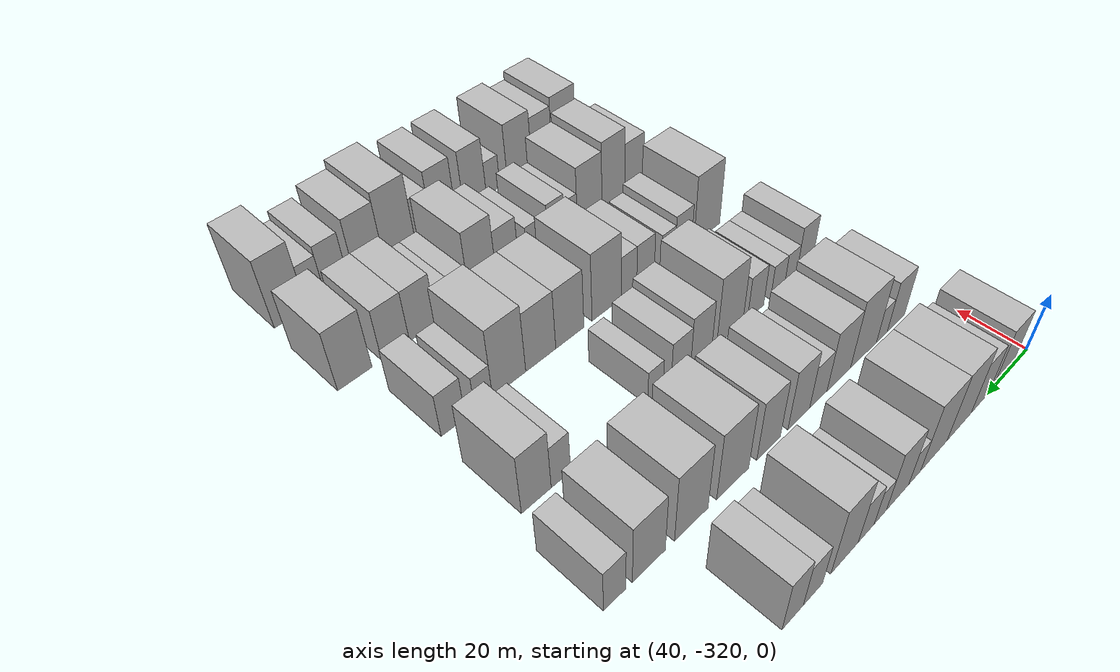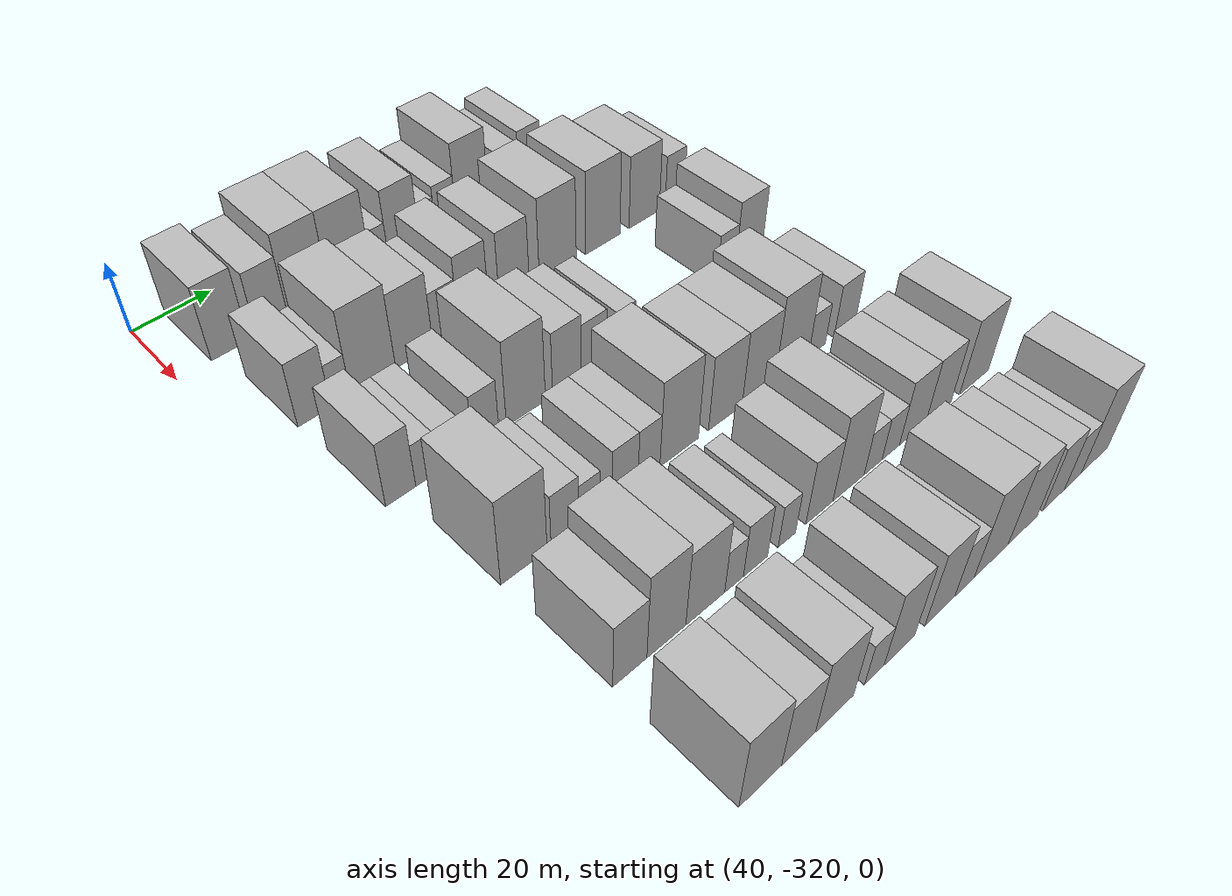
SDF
<sdf version="1.6">
 <world name="default">
  <model name="building_23">
   <static>1</static>
   <pose>50.0000 -307.0601 0 0.000000 0.000000 0.000000</pose>
   <link name="link">
    <pose>0 0 10.50 0 0 0</pose>
    <collision name="collision"><geometry><box><size>20.0000 9.2747 21.0000</size></box></geometry></collision>
    <visual name="visual">
     <cast_shadows>0</cast_shadows>
     <geometry><box><size>20.0000 9.2747 21.0000</size></box></geometry>
     <material>
      <script>
       <uri>model://HANNAS_wall/materials/scripts</uri>
       <uri>model://HANNAS_wall/materials/textures</uri>
       <name>vrc/HANNAS_wall</name>
      </script>
     </material>
    </visual>
   </link>
  </model>
  <model name="building_24">
   <static>1</static>
   <pose>50.0000 -296.2908 0 0.000000 0.000000 0.000000</pose>
   <link name="link">
    <pose>0 0 9.00 0 0 0</pose>
    <collision name="collision"><geometry><box><size>20.0000 8.2640 18.0000</size></box></geometry></collision>
    <visual name="visual">
     <cast_shadows>0</cast_shadows>
     <geometry><box><size>20.0000 8.2640 18.0000</size></box></geometry>
     <material>
      <script>
       <uri>model://HANNAS_wall/materials/scripts</uri>
       <uri>model://HANNAS_wall/materials/textures</uri>
       <name>vrc/HANNAS_wall</name>
      </script>
     </material>
    </visual>
   </link>
  </model>
  <model name="building_25">
   <static>1</static>
   <pose>50.0000 -286.5945 0 0.000000 0.000000 0.000000</pose>
   <link name="link">
    <pose>0 0 12.00 0 0 0</pose>
    <collision name="collision"><geometry><box><size>20.0000 11.1286 24.0000</size></box></geometry></collision>
    <visual name="visual">
     <cast_shadows>0</cast_shadows>
     <geometry><box><size>20.0000 11.1286 24.0000</size></box></geometry>
     <material>
      <script>
       <uri>model://HANNAS_wall/materials/scripts</uri>
       <uri>model://HANNAS_wall/materials/textures</uri>
       <name>vrc/HANNAS_wall</name>
      </script>
     </material>
    </visual>
   </link>
  </model>
  <model name="building_26">
   <static>1</static>
   <pose>50.0000 -275.2261 0 0.000000 0.000000 0.000000</pose>
   <link name="link">
    <pose>0 0 12.00 0 0 0</pose>
    <collision name="collision"><geometry><box><size>20.0000 11.6081 24.0000</size></box></geometry></collision>
    <visual name="visual">
     <cast_shadows>0</cast_shadows>
     <geometry><box><size>20.0000 11.6081 24.0000</size></box></geometry>
     <material>
      <script>
       <uri>model://HANNAS_wall/materials/scripts</uri>
       <uri>model://HANNAS_wall/materials/textures</uri>
       <name>vrc/HANNAS_wall</name>
      </script>
     </material>
    </visual>
   </link>
  </model>
  <model name="building_27">
   <static>1</static>
   <pose>50.0000 -266.9249 0 0.000000 0.000000 0.000000</pose>
   <link name="link">
    <pose>0 0 6.00 0 0 0</pose>
    <collision name="collision"><geometry><box><size>20.0000 4.9941 12.0000</size></box></geometry></collision>
    <visual name="visual">
     <cast_shadows>0</cast_shadows>
     <geometry><box><size>20.0000 4.9941 12.0000</size></box></geometry>
     <material>
      <script>
       <uri>model://HANNAS_wall/materials/scripts</uri>
       <uri>model://HANNAS_wall/materials/textures</uri>
       <name>vrc/HANNAS_wall</name>
      </script>
     </material>
    </visual>
   </link>
  </model>
  <model name="building_28">
   <static>1</static>
   <pose>50.0000 -259.8847 0 0.000000 0.000000 0.000000</pose>
   <link name="link">
    <pose>0 0 10.50 0 0 0</pose>
    <collision name="collision"><geometry><box><size>20.0000 9.0863 21.0000</size></box></geometry></collision>
    <visual name="visual">
     <cast_shadows>0</cast_shadows>
     <geometry><box><size>20.0000 9.0863 21.0000</size></box></geometry>
     <material>
      <script>
       <uri>model://HANNAS_wall/materials/scripts</uri>
       <uri>model://HANNAS_wall/materials/textures</uri>
       <name>vrc/HANNAS_wall</name>
      </script>
     </material>
    </visual>
   </link>
  </model>
  <model name="building_29">
   <static>1</static>
   <pose>50.0000 -252.9270 0 0.000000 0.000000 0.000000</pose>
   <link name="link">
    <pose>0 0 6.00 0 0 0</pose>
    <collision name="collision"><geometry><box><size>20.0000 4.8291 12.0000</size></box></geometry></collision>
    <visual name="visual">
     <cast_shadows>0</cast_shadows>
     <geometry><box><size>20.0000 4.8291 12.0000</size></box></geometry>
     <material>
      <script>
       <uri>model://HANNAS_wall/materials/scripts</uri>
       <uri>model://HANNAS_wall/materials/textures</uri>
       <name>vrc/HANNAS_wall</name>
      </script>
     </material>
    </visual>
   </link>
  </model>
  <model name="building_30">
   <static>1</static>
   <pose>50.0000 -247.3847 0 0.000000 0.000000 0.000000</pose>
   <link name="link">
    <pose>0 0 7.50 0 0 0</pose>
    <collision name="collision"><geometry><box><size>20.0000 6.2555 15.0000</size></box></geometry></collision>
    <visual name="visual">
     <cast_shadows>0</cast_shadows>
     <geometry><box><size>20.0000 6.2555 15.0000</size></box></geometry>
     <material>
      <script>
       <uri>model://HANNAS_wall/materials/scripts</uri>
       <uri>model://HANNAS_wall/materials/textures</uri>
       <name>vrc/HANNAS_wall</name>
      </script>
     </material>
    </visual>
   </link>
  </model>
  <model name="building_31">
   <static>1</static>
   <pose>50.0000 -239.2301 0 0.000000 0.000000 0.000000</pose>
   <link name="link">
    <pose>0 0 12.00 0 0 0</pose>
    <collision name="collision"><geometry><box><size>20.0000 10.0537 24.0000</size></box></geometry></collision>
    <visual name="visual">
     <cast_shadows>0</cast_shadows>
     <geometry><box><size>20.0000 10.0537 24.0000</size></box></geometry>
     <material>
      <script>
       <uri>model://HANNAS_wall/materials/scripts</uri>
       <uri>model://HANNAS_wall/materials/textures</uri>
       <name>vrc/HANNAS_wall</name>
      </script>
     </material>
    </visual>
   </link>
  </model>
  <model name="building_32">
   <static>1</static>
   <pose>50.0000 -227.8229 0 0.000000 0.000000 0.000000</pose>
   <link name="link">
    <pose>0 0 7.50 0 0 0</pose>
    <collision name="collision"><geometry><box><size>20.0000 6.7608 15.0000</size></box></geometry></collision>
    <visual name="visual">
     <cast_shadows>0</cast_shadows>
     <geometry><box><size>20.0000 6.7608 15.0000</size></box></geometry>
     <material>
      <script>
       <uri>model://HANNAS_wall/materials/scripts</uri>
       <uri>model://HANNAS_wall/materials/textures</uri>
       <name>vrc/HANNAS_wall</name>
      </script>
     </material>
    </visual>
   </link>
  </model>
  <model name="building_33">
   <static>1</static>
   <pose>50.0000 -220.8361 0 0.000000 0.000000 0.000000</pose>
   <link name="link">
    <pose>0 0 9.00 0 0 0</pose>
    <collision name="collision"><geometry><box><size>20.0000 7.2129 18.0000</size></box></geometry></collision>
    <visual name="visual">
     <cast_shadows>0</cast_shadows>
     <geometry><box><size>20.0000 7.2129 18.0000</size></box></geometry>
     <material>
      <script>
       <uri>model://HANNAS_wall/materials/scripts</uri>
       <uri>model://HANNAS_wall/materials/textures</uri>
       <name>vrc/HANNAS_wall</name>
      </script>
     </material>
    </visual>
   </link>
  </model>
  <model name="building_130">
   <static>1</static>
   <pose>79.0000 -304.5934 0 0.000000 0.000000 0.000000</pose>
   <link name="link">
    <pose>0 0 9.00 0 0 0</pose>
    <collision name="collision"><geometry><box><size>20.0000 8.1406 18.0000</size></box></geometry></collision>
    <visual name="visual">
     <cast_shadows>0</cast_shadows>
     <geometry><box><size>20.0000 8.1406 18.0000</size></box></geometry>
     <material>
      <script>
       <uri>model://HANNAS_wall/materials/scripts</uri>
       <uri>model://HANNAS_wall/materials/textures</uri>
       <name>vrc/HANNAS_wall</name>
      </script>
     </material>
    </visual>
   </link>
  </model>
  <model name="building_131">
   <static>1</static>
   <pose>79.0000 -298.0443 0 0.000000 0.000000 0.000000</pose>
   <link name="link">
    <pose>0 0 6.00 0 0 0</pose>
    <collision name="collision"><geometry><box><size>20.0000 4.9577 12.0000</size></box></geometry></collision>
    <visual name="visual">
     <cast_shadows>0</cast_shadows>
     <geometry><box><size>20.0000 4.9577 12.0000</size></box></geometry>
     <material>
      <script>
       <uri>model://HANNAS_wall/materials/scripts</uri>
       <uri>model://HANNAS_wall/materials/textures</uri>
       <name>vrc/HANNAS_wall</name>
      </script>
     </material>
    </visual>
   </link>
  </model>
  <model name="building_132">
   <static>1</static>
   <pose>79.0000 -289.7443 0 0.000000 0.000000 0.000000</pose>
   <link name="link">
    <pose>0 0 12.00 0 0 0</pose>
    <collision name="collision"><geometry><box><size>20.0000 11.6424 24.0000</size></box></geometry></collision>
    <visual name="visual">
     <cast_shadows>0</cast_shadows>
     <geometry><box><size>20.0000 11.6424 24.0000</size></box></geometry>
     <material>
      <script>
       <uri>model://HANNAS_wall/materials/scripts</uri>
       <uri>model://HANNAS_wall/materials/textures</uri>
       <name>vrc/HANNAS_wall</name>
      </script>
     </material>
    </visual>
   </link>
  </model>
  <model name="building_133">
   <static>1</static>
   <pose>79.0000 -278.8921 0 0.000000 0.000000 0.000000</pose>
   <link name="link">
    <pose>0 0 10.50 0 0 0</pose>
    <collision name="collision"><geometry><box><size>20.0000 10.0620 21.0000</size></box></geometry></collision>
    <visual name="visual">
     <cast_shadows>0</cast_shadows>
     <geometry><box><size>20.0000 10.0620 21.0000</size></box></geometry>
     <material>
      <script>
       <uri>model://HANNAS_wall/materials/scripts</uri>
       <uri>model://HANNAS_wall/materials/textures</uri>
       <name>vrc/HANNAS_wall</name>
      </script>
     </material>
    </visual>
   </link>
  </model>
  <model name="building_134">
   <static>1</static>
   <pose>79.0000 -270.2590 0 0.000000 0.000000 0.000000</pose>
   <link name="link">
    <pose>0 0 7.50 0 0 0</pose>
    <collision name="collision"><geometry><box><size>20.0000 7.2041 15.0000</size></box></geometry></collision>
    <visual name="visual">
     <cast_shadows>0</cast_shadows>
     <geometry><box><size>20.0000 7.2041 15.0000</size></box></geometry>
     <material>
      <script>
       <uri>model://HANNAS_wall/materials/scripts</uri>
       <uri>model://HANNAS_wall/materials/textures</uri>
       <name>vrc/HANNAS_wall</name>
      </script>
     </material>
    </visual>
   </link>
  </model>
  <model name="building_135">
   <static>1</static>
   <pose>79.0000 -262.3231 0 0.000000 0.000000 0.000000</pose>
   <link name="link">
    <pose>0 0 10.50 0 0 0</pose>
    <collision name="collision"><geometry><box><size>20.0000 8.6678 21.0000</size></box></geometry></collision>
    <visual name="visual">
     <cast_shadows>0</cast_shadows>
     <geometry><box><size>20.0000 8.6678 21.0000</size></box></geometry>
     <material>
      <script>
       <uri>model://HANNAS_wall/materials/scripts</uri>
       <uri>model://HANNAS_wall/materials/textures</uri>
       <name>vrc/HANNAS_wall</name>
      </script>
     </material>
    </visual>
   </link>
  </model>
  <model name="building_136">
   <static>1</static>
   <pose>79.0000 -250.5286 0 0.000000 0.000000 0.000000</pose>
   <link name="link">
    <pose>0 0 10.50 0 0 0</pose>
    <collision name="collision"><geometry><box><size>20.0000 8.9211 21.0000</size></box></geometry></collision>
    <visual name="visual">
     <cast_shadows>0</cast_shadows>
     <geometry><box><size>20.0000 8.9211 21.0000</size></box></geometry>
     <material>
      <script>
       <uri>model://HANNAS_wall/materials/scripts</uri>
       <uri>model://HANNAS_wall/materials/textures</uri>
       <name>vrc/HANNAS_wall</name>
      </script>
     </material>
    </visual>
   </link>
  </model>
  <model name="building_137">
   <static>1</static>
   <pose>79.0000 -237.3247 0 0.000000 0.000000 0.000000</pose>
   <link name="link">
    <pose>0 0 12.00 0 0 0</pose>
    <collision name="collision"><geometry><box><size>20.0000 11.4869 24.0000</size></box></geometry></collision>
    <visual name="visual">
     <cast_shadows>0</cast_shadows>
     <geometry><box><size>20.0000 11.4869 24.0000</size></box></geometry>
     <material>
      <script>
       <uri>model://HANNAS_wall/materials/scripts</uri>
       <uri>model://HANNAS_wall/materials/textures</uri>
       <name>vrc/HANNAS_wall</name>
      </script>
     </material>
    </visual>
   </link>
  </model>
  <model name="building_138">
   <static>1</static>
   <pose>79.0000 -222.9668 0 0.000000 0.000000 0.000000</pose>
   <link name="link">
    <pose>0 0 12.00 0 0 0</pose>
    <collision name="collision"><geometry><box><size>20.0000 11.2290 24.0000</size></box></geometry></collision>
    <visual name="visual">
     <cast_shadows>0</cast_shadows>
     <geometry><box><size>20.0000 11.2290 24.0000</size></box></geometry>
     <material>
      <script>
       <uri>model://HANNAS_wall/materials/scripts</uri>
       <uri>model://HANNAS_wall/materials/textures</uri>
       <name>vrc/HANNAS_wall</name>
      </script>
     </material>
    </visual>
   </link>
  </model>
  <model name="building_139">
   <static>1</static>
   <pose>79.0000 -209.1675 0 0.000000 0.000000 0.000000</pose>
   <link name="link">
    <pose>0 0 10.50 0 0 0</pose>
    <collision name="collision"><geometry><box><size>20.0000 10.3695 21.0000</size></box></geometry></collision>
    <visual name="visual">
     <cast_shadows>0</cast_shadows>
     <geometry><box><size>20.0000 10.3695 21.0000</size></box></geometry>
     <material>
      <script>
       <uri>model://HANNAS_wall/materials/scripts</uri>
       <uri>model://HANNAS_wall/materials/textures</uri>
       <name>vrc/HANNAS_wall</name>
      </script>
     </material>
    </visual>
   </link>
  </model>
  <model name="building_140">
   <static>1</static>
   <pose>79.0000 -198.6383 0 0.000000 0.000000 0.000000</pose>
   <link name="link">
    <pose>0 0 7.50 0 0 0</pose>
    <collision name="collision"><geometry><box><size>20.0000 6.6888 15.0000</size></box></geometry></collision>
    <visual name="visual">
     <cast_shadows>0</cast_shadows>
     <geometry><box><size>20.0000 6.6888 15.0000</size></box></geometry>
     <material>
      <script>
       <uri>model://HANNAS_wall/materials/scripts</uri>
       <uri>model://HANNAS_wall/materials/textures</uri>
       <name>vrc/HANNAS_wall</name>
      </script>
     </material>
    </visual>
   </link>
  </model>
  <model name="building_244">
   <static>1</static>
   <pose>108.0000 -304.0416 0 0.000000 0.000000 0.000000</pose>
   <link name="link">
    <pose>0 0 9.00 0 0 0</pose>
    <collision name="collision"><geometry><box><size>20.0000 7.2363 18.0000</size></box></geometry></collision>
    <visual name="visual">
     <cast_shadows>0</cast_shadows>
     <geometry><box><size>20.0000 7.2363 18.0000</size></box></geometry>
     <material>
      <script>
       <uri>model://HANNAS_wall/materials/scripts</uri>
       <uri>model://HANNAS_wall/materials/textures</uri>
       <name>vrc/HANNAS_wall</name>
      </script>
     </material>
    </visual>
   </link>
  </model>
  <model name="building_245">
   <static>1</static>
   <pose>108.0000 -297.7503 0 0.000000 0.000000 0.000000</pose>
   <link name="link">
    <pose>0 0 6.00 0 0 0</pose>
    <collision name="collision"><geometry><box><size>20.0000 5.3464 12.0000</size></box></geometry></collision>
    <visual name="visual">
     <cast_shadows>0</cast_shadows>
     <geometry><box><size>20.0000 5.3464 12.0000</size></box></geometry>
     <material>
      <script>
       <uri>model://HANNAS_wall/materials/scripts</uri>
       <uri>model://HANNAS_wall/materials/textures</uri>
       <name>vrc/HANNAS_wall</name>
      </script>
     </material>
    </visual>
   </link>
  </model>
  <model name="building_246">
   <static>1</static>
   <pose>108.0000 -292.0842 0 0.000000 0.000000 0.000000</pose>
   <link name="link">
    <pose>0 0 6.00 0 0 0</pose>
    <collision name="collision"><geometry><box><size>20.0000 5.9857 12.0000</size></box></geometry></collision>
    <visual name="visual">
     <cast_shadows>0</cast_shadows>
     <geometry><box><size>20.0000 5.9857 12.0000</size></box></geometry>
     <material>
      <script>
       <uri>model://HANNAS_wall/materials/scripts</uri>
       <uri>model://HANNAS_wall/materials/textures</uri>
       <name>vrc/HANNAS_wall</name>
      </script>
     </material>
    </visual>
   </link>
  </model>
  <model name="building_247">
   <static>1</static>
   <pose>108.0000 -282.6788 0 0.000000 0.000000 0.000000</pose>
   <link name="link">
    <pose>0 0 7.50 0 0 0</pose>
    <collision name="collision"><geometry><box><size>20.0000 6.8252 15.0000</size></box></geometry></collision>
    <visual name="visual">
     <cast_shadows>0</cast_shadows>
     <geometry><box><size>20.0000 6.8252 15.0000</size></box></geometry>
     <material>
      <script>
       <uri>model://HANNAS_wall/materials/scripts</uri>
       <uri>model://HANNAS_wall/materials/textures</uri>
       <name>vrc/HANNAS_wall</name>
      </script>
     </material>
    </visual>
   </link>
  </model>
  <model name="building_248">
   <static>1</static>
   <pose>108.0000 -271.9660 0 0.000000 0.000000 0.000000</pose>
   <link name="link">
    <pose>0 0 12.00 0 0 0</pose>
    <collision name="collision"><geometry><box><size>20.0000 10.6003 24.0000</size></box></geometry></collision>
    <visual name="visual">
     <cast_shadows>0</cast_shadows>
     <geometry><box><size>20.0000 10.6003 24.0000</size></box></geometry>
     <material>
      <script>
       <uri>model://HANNAS_wall/materials/scripts</uri>
       <uri>model://HANNAS_wall/materials/textures</uri>
       <name>vrc/HANNAS_wall</name>
      </script>
     </material>
    </visual>
   </link>
  </model>
  <model name="building_249">
   <static>1</static>
   <pose>108.0000 -260.5630 0 0.000000 0.000000 0.000000</pose>
   <link name="link">
    <pose>0 0 9.00 0 0 0</pose>
    <collision name="collision"><geometry><box><size>20.0000 8.2058 18.0000</size></box></geometry></collision>
    <visual name="visual">
     <cast_shadows>0</cast_shadows>
     <geometry><box><size>20.0000 8.2058 18.0000</size></box></geometry>
     <material>
      <script>
       <uri>model://HANNAS_wall/materials/scripts</uri>
       <uri>model://HANNAS_wall/materials/textures</uri>
       <name>vrc/HANNAS_wall</name>
      </script>
     </material>
    </visual>
   </link>
  </model>
  <model name="building_250">
   <static>1</static>
   <pose>108.0000 -252.7723 0 0.000000 0.000000 0.000000</pose>
   <link name="link">
    <pose>0 0 7.50 0 0 0</pose>
    <collision name="collision"><geometry><box><size>20.0000 7.3756 15.0000</size></box></geometry></collision>
    <visual name="visual">
     <cast_shadows>0</cast_shadows>
     <geometry><box><size>20.0000 7.3756 15.0000</size></box></geometry>
     <material>
      <script>
       <uri>model://HANNAS_wall/materials/scripts</uri>
       <uri>model://HANNAS_wall/materials/textures</uri>
       <name>vrc/HANNAS_wall</name>
      </script>
     </material>
    </visual>
   </link>
  </model>
  <model name="building_251">
   <static>1</static>
   <pose>108.0000 -243.3188 0 0.000000 0.000000 0.000000</pose>
   <link name="link">
    <pose>0 0 6.00 0 0 0</pose>
    <collision name="collision"><geometry><box><size>20.0000 5.5312 12.0000</size></box></geometry></collision>
    <visual name="visual">
     <cast_shadows>0</cast_shadows>
     <geometry><box><size>20.0000 5.5312 12.0000</size></box></geometry>
     <material>
      <script>
       <uri>model://HANNAS_wall/materials/scripts</uri>
       <uri>model://HANNAS_wall/materials/textures</uri>
       <name>vrc/HANNAS_wall</name>
      </script>
     </material>
    </visual>
   </link>
  </model>
  <model name="building_252">
   <static>1</static>
   <pose>108.0000 -211.3601 0 0.000000 0.000000 0.000000</pose>
   <link name="link">
    <pose>0 0 7.50 0 0 0</pose>
    <collision name="collision"><geometry><box><size>20.0000 6.1288 15.0000</size></box></geometry></collision>
    <visual name="visual">
     <cast_shadows>0</cast_shadows>
     <geometry><box><size>20.0000 6.1288 15.0000</size></box></geometry>
     <material>
      <script>
       <uri>model://HANNAS_wall/materials/scripts</uri>
       <uri>model://HANNAS_wall/materials/textures</uri>
       <name>vrc/HANNAS_wall</name>
      </script>
     </material>
    </visual>
   </link>
  </model>
  <model name="building_253">
   <static>1</static>
   <pose>108.0000 -203.7373 0 0.000000 0.000000 0.000000</pose>
   <link name="link">
    <pose>0 0 10.50 0 0 0</pose>
    <collision name="collision"><geometry><box><size>20.0000 9.1169 21.0000</size></box></geometry></collision>
    <visual name="visual">
     <cast_shadows>0</cast_shadows>
     <geometry><box><size>20.0000 9.1169 21.0000</size></box></geometry>
     <material>
      <script>
       <uri>model://HANNAS_wall/materials/scripts</uri>
       <uri>model://HANNAS_wall/materials/textures</uri>
       <name>vrc/HANNAS_wall</name>
      </script>
     </material>
    </visual>
   </link>
  </model>
  <model name="building_352">
   <static>1</static>
   <pose>137.0000 -297.3401 0 0.000000 0.000000 0.000000</pose>
   <link name="link">
    <pose>0 0 12.00 0 0 0</pose>
    <collision name="collision"><geometry><box><size>20.0000 11.3086 24.0000</size></box></geometry></collision>
    <visual name="visual">
     <cast_shadows>0</cast_shadows>
     <geometry><box><size>20.0000 11.3086 24.0000</size></box></geometry>
     <material>
      <script>
       <uri>model://HANNAS_wall/materials/scripts</uri>
       <uri>model://HANNAS_wall/materials/textures</uri>
       <name>vrc/HANNAS_wall</name>
      </script>
     </material>
    </visual>
   </link>
  </model>
  <model name="building_353">
   <static>1</static>
   <pose>137.0000 -287.1464 0 0.000000 0.000000 0.000000</pose>
   <link name="link">
    <pose>0 0 7.50 0 0 0</pose>
    <collision name="collision"><geometry><box><size>20.0000 7.0788 15.0000</size></box></geometry></collision>
    <visual name="visual">
     <cast_shadows>0</cast_shadows>
     <geometry><box><size>20.0000 7.0788 15.0000</size></box></geometry>
     <material>
      <script>
       <uri>model://HANNAS_wall/materials/scripts</uri>
       <uri>model://HANNAS_wall/materials/textures</uri>
       <name>vrc/HANNAS_wall</name>
      </script>
     </material>
    </visual>
   </link>
  </model>
  <model name="building_354">
   <static>1</static>
   <pose>137.0000 -280.8246 0 0.000000 0.000000 0.000000</pose>
   <link name="link">
    <pose>0 0 6.00 0 0 0</pose>
    <collision name="collision"><geometry><box><size>20.0000 5.5648 12.0000</size></box></geometry></collision>
    <visual name="visual">
     <cast_shadows>0</cast_shadows>
     <geometry><box><size>20.0000 5.5648 12.0000</size></box></geometry>
     <material>
      <script>
       <uri>model://HANNAS_wall/materials/scripts</uri>
       <uri>model://HANNAS_wall/materials/textures</uri>
       <name>vrc/HANNAS_wall</name>
      </script>
     </material>
    </visual>
   </link>
  </model>
  <model name="building_355">
   <static>1</static>
   <pose>137.0000 -271.5064 0 0.000000 0.000000 0.000000</pose>
   <link name="link">
    <pose>0 0 7.50 0 0 0</pose>
    <collision name="collision"><geometry><box><size>20.0000 7.0716 15.0000</size></box></geometry></collision>
    <visual name="visual">
     <cast_shadows>0</cast_shadows>
     <geometry><box><size>20.0000 7.0716 15.0000</size></box></geometry>
     <material>
      <script>
       <uri>model://HANNAS_wall/materials/scripts</uri>
       <uri>model://HANNAS_wall/materials/textures</uri>
       <name>vrc/HANNAS_wall</name>
      </script>
     </material>
    </visual>
   </link>
  </model>
  <model name="building_356">
   <static>1</static>
   <pose>137.0000 -264.9359 0 0.000000 0.000000 0.000000</pose>
   <link name="link">
    <pose>0 0 7.50 0 0 0</pose>
    <collision name="collision"><geometry><box><size>20.0000 6.0695 15.0000</size></box></geometry></collision>
    <visual name="visual">
     <cast_shadows>0</cast_shadows>
     <geometry><box><size>20.0000 6.0695 15.0000</size></box></geometry>
     <material>
      <script>
       <uri>model://HANNAS_wall/materials/scripts</uri>
       <uri>model://HANNAS_wall/materials/textures</uri>
       <name>vrc/HANNAS_wall</name>
      </script>
     </material>
    </visual>
   </link>
  </model>
  <model name="building_357">
   <static>1</static>
   <pose>137.0000 -256.3685 0 0.000000 0.000000 0.000000</pose>
   <link name="link">
    <pose>0 0 12.00 0 0 0</pose>
    <collision name="collision"><geometry><box><size>20.0000 11.0653 24.0000</size></box></geometry></collision>
    <visual name="visual">
     <cast_shadows>0</cast_shadows>
     <geometry><box><size>20.0000 11.0653 24.0000</size></box></geometry>
     <material>
      <script>
       <uri>model://HANNAS_wall/materials/scripts</uri>
       <uri>model://HANNAS_wall/materials/textures</uri>
       <name>vrc/HANNAS_wall</name>
      </script>
     </material>
    </visual>
   </link>
  </model>
  <model name="building_358">
   <static>1</static>
   <pose>137.0000 -242.7666 0 0.000000 0.000000 0.000000</pose>
   <link name="link">
    <pose>0 0 10.50 0 0 0</pose>
    <collision name="collision"><geometry><box><size>20.0000 10.1385 21.0000</size></box></geometry></collision>
    <visual name="visual">
     <cast_shadows>0</cast_shadows>
     <geometry><box><size>20.0000 10.1385 21.0000</size></box></geometry>
     <material>
      <script>
       <uri>model://HANNAS_wall/materials/scripts</uri>
       <uri>model://HANNAS_wall/materials/textures</uri>
       <name>vrc/HANNAS_wall</name>
      </script>
     </material>
    </visual>
   </link>
  </model>
  <model name="building_359">
   <static>1</static>
   <pose>137.0000 -232.5146 0 0.000000 0.000000 0.000000</pose>
   <link name="link">
    <pose>0 0 10.50 0 0 0</pose>
    <collision name="collision"><geometry><box><size>20.0000 10.3655 21.0000</size></box></geometry></collision>
    <visual name="visual">
     <cast_shadows>0</cast_shadows>
     <geometry><box><size>20.0000 10.3655 21.0000</size></box></geometry>
     <material>
      <script>
       <uri>model://HANNAS_wall/materials/scripts</uri>
       <uri>model://HANNAS_wall/materials/textures</uri>
       <name>vrc/HANNAS_wall</name>
      </script>
     </material>
    </visual>
   </link>
  </model>
  <model name="building_360">
   <static>1</static>
   <pose>137.0000 -221.8399 0 0.000000 0.000000 0.000000</pose>
   <link name="link">
    <pose>0 0 12.00 0 0 0</pose>
    <collision name="collision"><geometry><box><size>20.0000 10.9840 24.0000</size></box></geometry></collision>
    <visual name="visual">
     <cast_shadows>0</cast_shadows>
     <geometry><box><size>20.0000 10.9840 24.0000</size></box></geometry>
     <material>
      <script>
       <uri>model://HANNAS_wall/materials/scripts</uri>
       <uri>model://HANNAS_wall/materials/textures</uri>
       <name>vrc/HANNAS_wall</name>
      </script>
     </material>
    </visual>
   </link>
  </model>
  <model name="building_361">
   <static>1</static>
   <pose>137.0000 -213.5292 0 0.000000 0.000000 0.000000</pose>
   <link name="link">
    <pose>0 0 6.00 0 0 0</pose>
    <collision name="collision"><geometry><box><size>20.0000 5.6375 12.0000</size></box></geometry></collision>
    <visual name="visual">
     <cast_shadows>0</cast_shadows>
     <geometry><box><size>20.0000 5.6375 12.0000</size></box></geometry>
     <material>
      <script>
       <uri>model://HANNAS_wall/materials/scripts</uri>
       <uri>model://HANNAS_wall/materials/textures</uri>
       <name>vrc/HANNAS_wall</name>
      </script>
     </material>
    </visual>
   </link>
  </model>
  <model name="building_362">
   <static>1</static>
   <pose>137.0000 -203.9922 0 0.000000 0.000000 0.000000</pose>
   <link name="link">
    <pose>0 0 7.50 0 0 0</pose>
    <collision name="collision"><geometry><box><size>20.0000 7.4365 15.0000</size></box></geometry></collision>
    <visual name="visual">
     <cast_shadows>0</cast_shadows>
     <geometry><box><size>20.0000 7.4365 15.0000</size></box></geometry>
     <material>
      <script>
       <uri>model://HANNAS_wall/materials/scripts</uri>
       <uri>model://HANNAS_wall/materials/textures</uri>
       <name>vrc/HANNAS_wall</name>
      </script>
     </material>
    </visual>
   </link>
  </model>
  <model name="building_469">
   <static>1</static>
   <pose>166.0000 -298.2277 0 0.000000 0.000000 0.000000</pose>
   <link name="link">
    <pose>0 0 9.00 0 0 0</pose>
    <collision name="collision"><geometry><box><size>20.0000 8.1893 18.0000</size></box></geometry></collision>
    <visual name="visual">
     <cast_shadows>0</cast_shadows>
     <geometry><box><size>20.0000 8.1893 18.0000</size></box></geometry>
     <material>
      <script>
       <uri>model://HANNAS_wall/materials/scripts</uri>
       <uri>model://HANNAS_wall/materials/textures</uri>
       <name>vrc/HANNAS_wall</name>
      </script>
     </material>
    </visual>
   </link>
  </model>
  <model name="building_470">
   <static>1</static>
   <pose>166.0000 -289.2755 0 0.000000 0.000000 0.000000</pose>
   <link name="link">
    <pose>0 0 12.00 0 0 0</pose>
    <collision name="collision"><geometry><box><size>20.0000 9.7151 24.0000</size></box></geometry></collision>
    <visual name="visual">
     <cast_shadows>0</cast_shadows>
     <geometry><box><size>20.0000 9.7151 24.0000</size></box></geometry>
     <material>
      <script>
       <uri>model://HANNAS_wall/materials/scripts</uri>
       <uri>model://HANNAS_wall/materials/textures</uri>
       <name>vrc/HANNAS_wall</name>
      </script>
     </material>
    </visual>
   </link>
  </model>
  <model name="building_471">
   <static>1</static>
   <pose>166.0000 -279.3530 0 0.000000 0.000000 0.000000</pose>
   <link name="link">
    <pose>0 0 10.50 0 0 0</pose>
    <collision name="collision"><geometry><box><size>20.0000 10.1298 21.0000</size></box></geometry></collision>
    <visual name="visual">
     <cast_shadows>0</cast_shadows>
     <geometry><box><size>20.0000 10.1298 21.0000</size></box></geometry>
     <material>
      <script>
       <uri>model://HANNAS_wall/materials/scripts</uri>
       <uri>model://HANNAS_wall/materials/textures</uri>
       <name>vrc/HANNAS_wall</name>
      </script>
     </material>
    </visual>
   </link>
  </model>
  <model name="building_472">
   <static>1</static>
   <pose>166.0000 -271.7784 0 0.000000 0.000000 0.000000</pose>
   <link name="link">
    <pose>0 0 6.00 0 0 0</pose>
    <collision name="collision"><geometry><box><size>20.0000 5.0195 12.0000</size></box></geometry></collision>
    <visual name="visual">
     <cast_shadows>0</cast_shadows>
     <geometry><box><size>20.0000 5.0195 12.0000</size></box></geometry>
     <material>
      <script>
       <uri>model://HANNAS_wall/materials/scripts</uri>
       <uri>model://HANNAS_wall/materials/textures</uri>
       <name>vrc/HANNAS_wall</name>
      </script>
     </material>
    </visual>
   </link>
  </model>
  <model name="building_473">
   <static>1</static>
   <pose>166.0000 -265.9327 0 0.000000 0.000000 0.000000</pose>
   <link name="link">
    <pose>0 0 7.50 0 0 0</pose>
    <collision name="collision"><geometry><box><size>20.0000 6.6718 15.0000</size></box></geometry></collision>
    <visual name="visual">
     <cast_shadows>0</cast_shadows>
     <geometry><box><size>20.0000 6.6718 15.0000</size></box></geometry>
     <material>
      <script>
       <uri>model://HANNAS_wall/materials/scripts</uri>
       <uri>model://HANNAS_wall/materials/textures</uri>
       <name>vrc/HANNAS_wall</name>
      </script>
     </material>
    </visual>
   </link>
  </model>
  <model name="building_474">
   <static>1</static>
   <pose>166.0000 -257.1157 0 0.000000 0.000000 0.000000</pose>
   <link name="link">
    <pose>0 0 6.00 0 0 0</pose>
    <collision name="collision"><geometry><box><size>20.0000 4.9623 12.0000</size></box></geometry></collision>
    <visual name="visual">
     <cast_shadows>0</cast_shadows>
     <geometry><box><size>20.0000 4.9623 12.0000</size></box></geometry>
     <material>
      <script>
       <uri>model://HANNAS_wall/materials/scripts</uri>
       <uri>model://HANNAS_wall/materials/textures</uri>
       <name>vrc/HANNAS_wall</name>
      </script>
     </material>
    </visual>
   </link>
  </model>
  <model name="building_475">
   <static>1</static>
   <pose>166.0000 -247.5817 0 0.000000 0.000000 0.000000</pose>
   <link name="link">
    <pose>0 0 9.00 0 0 0</pose>
    <collision name="collision"><geometry><box><size>20.0000 8.1056 18.0000</size></box></geometry></collision>
    <visual name="visual">
     <cast_shadows>0</cast_shadows>
     <geometry><box><size>20.0000 8.1056 18.0000</size></box></geometry>
     <material>
      <script>
       <uri>model://HANNAS_wall/materials/scripts</uri>
       <uri>model://HANNAS_wall/materials/textures</uri>
       <name>vrc/HANNAS_wall</name>
      </script>
     </material>
    </visual>
   </link>
  </model>
  <model name="building_476">
   <static>1</static>
   <pose>166.0000 -238.7047 0 0.000000 0.000000 0.000000</pose>
   <link name="link">
    <pose>0 0 12.00 0 0 0</pose>
    <collision name="collision"><geometry><box><size>20.0000 9.6484 24.0000</size></box></geometry></collision>
    <visual name="visual">
     <cast_shadows>0</cast_shadows>
     <geometry><box><size>20.0000 9.6484 24.0000</size></box></geometry>
     <material>
      <script>
       <uri>model://HANNAS_wall/materials/scripts</uri>
       <uri>model://HANNAS_wall/materials/textures</uri>
       <name>vrc/HANNAS_wall</name>
      </script>
     </material>
    </visual>
   </link>
  </model>
  <model name="building_477">
   <static>1</static>
   <pose>166.0000 -231.0434 0 0.000000 0.000000 0.000000</pose>
   <link name="link">
    <pose>0 0 6.00 0 0 0</pose>
    <collision name="collision"><geometry><box><size>20.0000 5.6742 12.0000</size></box></geometry></collision>
    <visual name="visual">
     <cast_shadows>0</cast_shadows>
     <geometry><box><size>20.0000 5.6742 12.0000</size></box></geometry>
     <material>
      <script>
       <uri>model://HANNAS_wall/materials/scripts</uri>
       <uri>model://HANNAS_wall/materials/textures</uri>
       <name>vrc/HANNAS_wall</name>
      </script>
     </material>
    </visual>
   </link>
  </model>
  <model name="building_478">
   <static>1</static>
   <pose>166.0000 -225.3553 0 0.000000 0.000000 0.000000</pose>
   <link name="link">
    <pose>0 0 6.00 0 0 0</pose>
    <collision name="collision"><geometry><box><size>20.0000 5.7022 12.0000</size></box></geometry></collision>
    <visual name="visual">
     <cast_shadows>0</cast_shadows>
     <geometry><box><size>20.0000 5.7022 12.0000</size></box></geometry>
     <material>
      <script>
       <uri>model://HANNAS_wall/materials/scripts</uri>
       <uri>model://HANNAS_wall/materials/textures</uri>
       <name>vrc/HANNAS_wall</name>
      </script>
     </material>
    </visual>
   </link>
  </model>
  <model name="building_479">
   <static>1</static>
   <pose>166.0000 -218.1030 0 0.000000 0.000000 0.000000</pose>
   <link name="link">
    <pose>0 0 9.00 0 0 0</pose>
    <collision name="collision"><geometry><box><size>20.0000 8.8024 18.0000</size></box></geometry></collision>
    <visual name="visual">
     <cast_shadows>0</cast_shadows>
     <geometry><box><size>20.0000 8.8024 18.0000</size></box></geometry>
     <material>
      <script>
       <uri>model://HANNAS_wall/materials/scripts</uri>
       <uri>model://HANNAS_wall/materials/textures</uri>
       <name>vrc/HANNAS_wall</name>
      </script>
     </material>
    </visual>
   </link>
  </model>
  <model name="building_480">
   <static>1</static>
   <pose>166.0000 -209.2888 0 0.000000 0.000000 0.000000</pose>
   <link name="link">
    <pose>0 0 9.00 0 0 0</pose>
    <collision name="collision"><geometry><box><size>20.0000 8.8259 18.0000</size></box></geometry></collision>
    <visual name="visual">
     <cast_shadows>0</cast_shadows>
     <geometry><box><size>20.0000 8.8259 18.0000</size></box></geometry>
     <material>
      <script>
       <uri>model://HANNAS_wall/materials/scripts</uri>
       <uri>model://HANNAS_wall/materials/textures</uri>
       <name>vrc/HANNAS_wall</name>
      </script>
     </material>
    </visual>
   </link>
  </model>
  <model name="building_481">
   <static>1</static>
   <pose>166.0000 -196.6890 0 0.000000 0.000000 0.000000</pose>
   <link name="link">
    <pose>0 0 10.50 0 0 0</pose>
    <collision name="collision"><geometry><box><size>20.0000 10.3737 21.0000</size></box></geometry></collision>
    <visual name="visual">
     <cast_shadows>0</cast_shadows>
     <geometry><box><size>20.0000 10.3737 21.0000</size></box></geometry>
     <material>
      <script>
       <uri>model://HANNAS_wall/materials/scripts</uri>
       <uri>model://HANNAS_wall/materials/textures</uri>
       <name>vrc/HANNAS_wall</name>
      </script>
     </material>
    </visual>
   </link>
  </model>
  <model name="building_586">
   <static>1</static>
   <pose>195.0000 -297.1758 0 0.000000 0.000000 0.000000</pose>
   <link name="link">
    <pose>0 0 10.50 0 0 0</pose>
    <collision name="collision"><geometry><box><size>20.0000 10.2659 21.0000</size></box></geometry></collision>
    <visual name="visual">
     <cast_shadows>0</cast_shadows>
     <geometry><box><size>20.0000 10.2659 21.0000</size></box></geometry>
     <material>
      <script>
       <uri>model://HANNAS_wall/materials/scripts</uri>
       <uri>model://HANNAS_wall/materials/textures</uri>
       <name>vrc/HANNAS_wall</name>
      </script>
     </material>
    </visual>
   </link>
  </model>
  <model name="building_587">
   <static>1</static>
   <pose>195.0000 -287.7885 0 0.000000 0.000000 0.000000</pose>
   <link name="link">
    <pose>0 0 9.00 0 0 0</pose>
    <collision name="collision"><geometry><box><size>20.0000 8.5088 18.0000</size></box></geometry></collision>
    <visual name="visual">
     <cast_shadows>0</cast_shadows>
     <geometry><box><size>20.0000 8.5088 18.0000</size></box></geometry>
     <material>
      <script>
       <uri>model://HANNAS_wall/materials/scripts</uri>
       <uri>model://HANNAS_wall/materials/textures</uri>
       <name>vrc/HANNAS_wall</name>
      </script>
     </material>
    </visual>
   </link>
  </model>
  <model name="building_588">
   <static>1</static>
   <pose>195.0000 -278.5341 0 0.000000 0.000000 0.000000</pose>
   <link name="link">
    <pose>0 0 10.50 0 0 0</pose>
    <collision name="collision"><geometry><box><size>20.0000 9.9999 21.0000</size></box></geometry></collision>
    <visual name="visual">
     <cast_shadows>0</cast_shadows>
     <geometry><box><size>20.0000 9.9999 21.0000</size></box></geometry>
     <material>
      <script>
       <uri>model://HANNAS_wall/materials/scripts</uri>
       <uri>model://HANNAS_wall/materials/textures</uri>
       <name>vrc/HANNAS_wall</name>
      </script>
     </material>
    </visual>
   </link>
  </model>
  <model name="building_589">
   <static>1</static>
   <pose>195.0000 -267.8443 0 0.000000 0.000000 0.000000</pose>
   <link name="link">
    <pose>0 0 6.00 0 0 0</pose>
    <collision name="collision"><geometry><box><size>20.0000 5.3797 12.0000</size></box></geometry></collision>
    <visual name="visual">
     <cast_shadows>0</cast_shadows>
     <geometry><box><size>20.0000 5.3797 12.0000</size></box></geometry>
     <material>
      <script>
       <uri>model://HANNAS_wall/materials/scripts</uri>
       <uri>model://HANNAS_wall/materials/textures</uri>
       <name>vrc/HANNAS_wall</name>
      </script>
     </material>
    </visual>
   </link>
  </model>
  <model name="building_590">
   <static>1</static>
   <pose>195.0000 -260.8126 0 0.000000 0.000000 0.000000</pose>
   <link name="link">
    <pose>0 0 10.50 0 0 0</pose>
    <collision name="collision"><geometry><box><size>20.0000 8.6838 21.0000</size></box></geometry></collision>
    <visual name="visual">
     <cast_shadows>0</cast_shadows>
     <geometry><box><size>20.0000 8.6838 21.0000</size></box></geometry>
     <material>
      <script>
       <uri>model://HANNAS_wall/materials/scripts</uri>
       <uri>model://HANNAS_wall/materials/textures</uri>
       <name>vrc/HANNAS_wall</name>
      </script>
     </material>
    </visual>
   </link>
  </model>
  <model name="building_591">
   <static>1</static>
   <pose>195.0000 -248.9774 0 0.000000 0.000000 0.000000</pose>
   <link name="link">
    <pose>0 0 10.50 0 0 0</pose>
    <collision name="collision"><geometry><box><size>20.0000 8.9865 21.0000</size></box></geometry></collision>
    <visual name="visual">
     <cast_shadows>0</cast_shadows>
     <geometry><box><size>20.0000 8.9865 21.0000</size></box></geometry>
     <material>
      <script>
       <uri>model://HANNAS_wall/materials/scripts</uri>
       <uri>model://HANNAS_wall/materials/textures</uri>
       <name>vrc/HANNAS_wall</name>
      </script>
     </material>
    </visual>
   </link>
  </model>
  <model name="building_592">
   <static>1</static>
   <pose>195.0000 -241.4624 0 0.000000 0.000000 0.000000</pose>
   <link name="link">
    <pose>0 0 7.50 0 0 0</pose>
    <collision name="collision"><geometry><box><size>20.0000 6.0435 15.0000</size></box></geometry></collision>
    <visual name="visual">
     <cast_shadows>0</cast_shadows>
     <geometry><box><size>20.0000 6.0435 15.0000</size></box></geometry>
     <material>
      <script>
       <uri>model://HANNAS_wall/materials/scripts</uri>
       <uri>model://HANNAS_wall/materials/textures</uri>
       <name>vrc/HANNAS_wall</name>
      </script>
     </material>
    </visual>
   </link>
  </model>
  <model name="building_593">
   <static>1</static>
   <pose>195.0000 -232.9964 0 0.000000 0.000000 0.000000</pose>
   <link name="link">
    <pose>0 0 12.00 0 0 0</pose>
    <collision name="collision"><geometry><box><size>20.0000 10.8884 24.0000</size></box></geometry></collision>
    <visual name="visual">
     <cast_shadows>0</cast_shadows>
     <geometry><box><size>20.0000 10.8884 24.0000</size></box></geometry>
     <material>
      <script>
       <uri>model://HANNAS_wall/materials/scripts</uri>
       <uri>model://HANNAS_wall/materials/textures</uri>
       <name>vrc/HANNAS_wall</name>
      </script>
     </material>
    </visual>
   </link>
  </model>
  <model name="building_594">
   <static>1</static>
   <pose>195.0000 -222.6748 0 0.000000 0.000000 0.000000</pose>
   <link name="link">
    <pose>0 0 10.50 0 0 0</pose>
    <collision name="collision"><geometry><box><size>20.0000 9.7549 21.0000</size></box></geometry></collision>
    <visual name="visual">
     <cast_shadows>0</cast_shadows>
     <geometry><box><size>20.0000 9.7549 21.0000</size></box></geometry>
     <material>
      <script>
       <uri>model://HANNAS_wall/materials/scripts</uri>
       <uri>model://HANNAS_wall/materials/textures</uri>
       <name>vrc/HANNAS_wall</name>
      </script>
     </material>
    </visual>
   </link>
  </model>
  <model name="building_595">
   <static>1</static>
   <pose>195.0000 -212.0086 0 0.000000 0.000000 0.000000</pose>
   <link name="link">
    <pose>0 0 9.00 0 0 0</pose>
    <collision name="collision"><geometry><box><size>20.0000 7.5774 18.0000</size></box></geometry></collision>
    <visual name="visual">
     <cast_shadows>0</cast_shadows>
     <geometry><box><size>20.0000 7.5774 18.0000</size></box></geometry>
     <material>
      <script>
       <uri>model://HANNAS_wall/materials/scripts</uri>
       <uri>model://HANNAS_wall/materials/textures</uri>
       <name>vrc/HANNAS_wall</name>
      </script>
     </material>
    </visual>
   </link>
  </model>
  <model name="building_596">
   <static>1</static>
   <pose>195.0000 -205.2023 0 0.000000 0.000000 0.000000</pose>
   <link name="link">
    <pose>0 0 7.50 0 0 0</pose>
    <collision name="collision"><geometry><box><size>20.0000 6.0352 15.0000</size></box></geometry></collision>
    <visual name="visual">
     <cast_shadows>0</cast_shadows>
     <geometry><box><size>20.0000 6.0352 15.0000</size></box></geometry>
     <material>
      <script>
       <uri>model://HANNAS_wall/materials/scripts</uri>
       <uri>model://HANNAS_wall/materials/textures</uri>
       <name>vrc/HANNAS_wall</name>
      </script>
     </material>
    </visual>
   </link>
  </model>
  <model name="building_597">
   <static>1</static>
   <pose>195.0000 -197.2709 0 0.000000 0.000000 0.000000</pose>
   <link name="link">
    <pose>0 0 12.00 0 0 0</pose>
    <collision name="collision"><geometry><box><size>20.0000 9.8275 24.0000</size></box></geometry></collision>
    <visual name="visual">
     <cast_shadows>0</cast_shadows>
     <geometry><box><size>20.0000 9.8275 24.0000</size></box></geometry>
     <material>
      <script>
       <uri>model://HANNAS_wall/materials/scripts</uri>
       <uri>model://HANNAS_wall/materials/textures</uri>
       <name>vrc/HANNAS_wall</name>
      </script>
     </material>
    </visual>
   </link>
  </model>
 </world>
</sdf>
